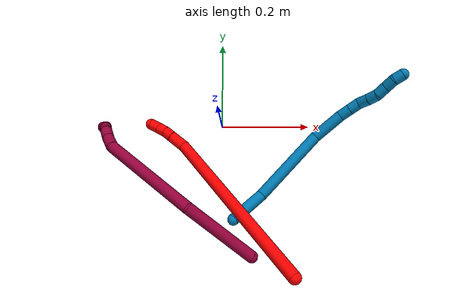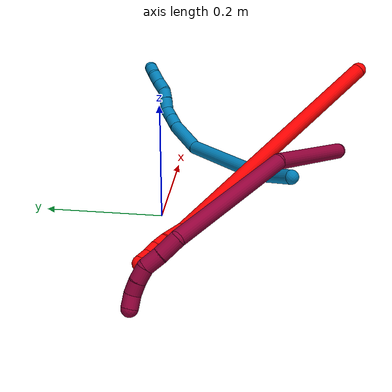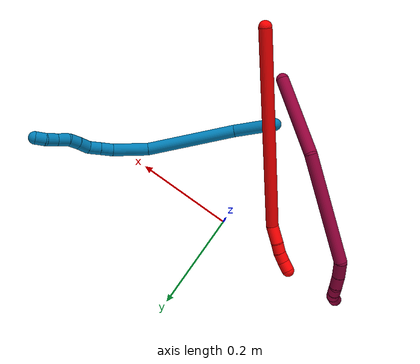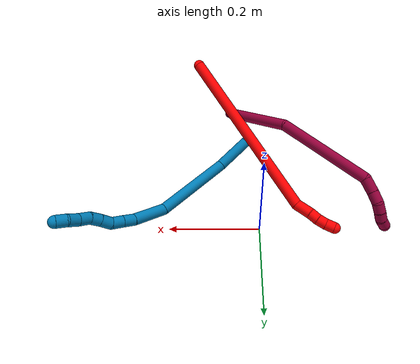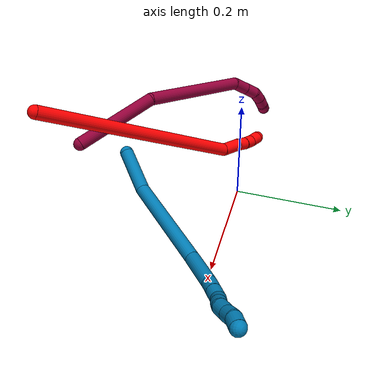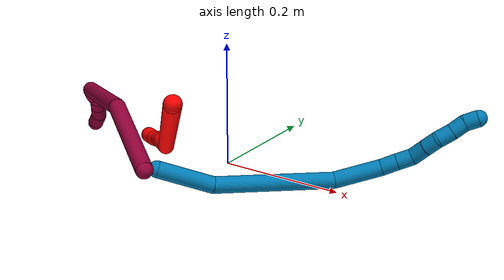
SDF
<sdf version="1.7">
 <world name="default">
  <model name="2">
   <static>0</static>
   <link name="2">
    <collision name="collision-cylinder-e_1_1_4">
     <pose>-0.054766 0.105555 -0.161891 -2.5638 -0.276135 0.874656</pose>
     <geometry><cylinder><radius>0.0125</radius><length>0.401745</length></cylinder></geometry>
     <surface>
      <friction><ode><mu>1.16</mu><mu2>1.16</mu2><slip1>0</slip1><slip2>0</slip2></ode></friction>
      <contact><ode><kp>1e+06</kp><kd>1</kd><max_vel>0</max_vel><min_depth>0.001</min_depth></ode></contact>
     </surface>
    </collision>
    <visual name="visual-cylinder-e_1_1_4">
     <pose>-0.054766 0.105555 -0.161891 -2.5638 -0.276135 0.874656</pose>
     <geometry><cylinder><radius>0.0125</radius><length>0.401745</length></cylinder></geometry>
     <material><ambient>1 0 0 1</ambient></material>
    </visual>
    <collision name="collision-cylinder-e_2_4_5">
     <pose>-0.119927 0.214545 -0.338696 -2.91524 -0.596665 2.43349</pose>
     <geometry><cylinder><radius>0.0125</radius><length>0.037003</length></cylinder></geometry>
     <surface>
      <friction><ode><mu>1.16</mu><mu2>1.16</mu2><slip1>0</slip1><slip2>0</slip2></ode></friction>
      <contact><ode><kp>1e+06</kp><kd>1</kd><max_vel>0</max_vel><min_depth>0.001</min_depth></ode></contact>
     </surface>
    </collision>
    <visual name="visual-cylinder-e_2_4_5">
     <pose>-0.119927 0.214545 -0.338696 -2.91524 -0.596665 2.43349</pose>
     <geometry><cylinder><radius>0.0125</radius><length>0.037003</length></cylinder></geometry>
     <material><ambient>1 0 0 1</ambient></material>
    </visual>
    <collision name="collision-cylinder-e_3_5_6">
     <pose>-0.134783 0.220891 -0.362161 -2.81338 -0.458634 1.90754</pose>
     <geometry><cylinder><radius>0.0125</radius><length>0.020148</length></cylinder></geometry>
     <surface>
      <friction><ode><mu>1.16</mu><mu2>1.16</mu2><slip1>0</slip1><slip2>0</slip2></ode></friction>
      <contact><ode><kp>1e+06</kp><kd>1</kd><max_vel>0</max_vel><min_depth>0.001</min_depth></ode></contact>
     </surface>
    </collision>
    <visual name="visual-cylinder-e_3_5_6">
     <pose>-0.134783 0.220891 -0.362161 -2.81338 -0.458634 1.90754</pose>
     <geometry><cylinder><radius>0.0125</radius><length>0.020148</length></cylinder></geometry>
     <material><ambient>1 0 0 1</ambient></material>
    </visual>
    <collision name="collision-cylinder-e_4_6_7">
     <pose>-0.143308 0.22515 -0.379944 -2.9967 -0.410864 2.47131</pose>
     <geometry><cylinder><radius>0.0125</radius><length>0.020355</length></cylinder></geometry>
     <surface>
      <friction><ode><mu>1.16</mu><mu2>1.16</mu2><slip1>0</slip1><slip2>0</slip2></ode></friction>
      <contact><ode><kp>1e+06</kp><kd>1</kd><max_vel>0</max_vel><min_depth>0.001</min_depth></ode></contact>
     </surface>
    </collision>
    <visual name="visual-cylinder-e_4_6_7">
     <pose>-0.143308 0.22515 -0.379944 -2.9967 -0.410864 2.47131</pose>
     <geometry><cylinder><radius>0.0125</radius><length>0.020355</length></cylinder></geometry>
     <material><ambient>1 0 0 1</ambient></material>
    </visual>
    <collision name="collision-cylinder-e_5_7_2">
     <pose>-0.15271 0.226621 -0.398072 -3.1277 -0.540376 3.09143</pose>
     <geometry><cylinder><radius>0.0125</radius><length>0.02075</length></cylinder></geometry>
     <surface>
      <friction><ode><mu>1.16</mu><mu2>1.16</mu2><slip1>0</slip1><slip2>0</slip2></ode></friction>
      <contact><ode><kp>1e+06</kp><kd>1</kd><max_vel>0</max_vel><min_depth>0.001</min_depth></ode></contact>
     </surface>
    </collision>
    <visual name="visual-cylinder-e_5_7_2">
     <pose>-0.15271 0.226621 -0.398072 -3.1277 -0.540376 3.09143</pose>
     <geometry><cylinder><radius>0.0125</radius><length>0.02075</length></cylinder></geometry>
     <material><ambient>1 0 0 1</ambient></material>
    </visual>
    <collision name="collision-sphere-2">
     <pose>-0.158047 0.226745 -0.406968 0 -0 0</pose>
     <geometry><sphere><radius>0.0125</radius></sphere></geometry>
     <surface>
      <friction><ode><mu>1.16</mu><mu2>1.16</mu2><slip1>0</slip1><slip2>0</slip2></ode></friction>
      <contact><ode><kp>1e+06</kp><kd>1</kd><max_vel>0</max_vel><min_depth>0.001</min_depth></ode></contact>
     </surface>
    </collision>
    <visual name="visual-sphere-2">
     <pose>-0.158047 0.226745 -0.406968 0 -0 0</pose>
     <geometry><sphere><radius>0.0125</radius></sphere></geometry>
     <material><ambient>1 0 0 1</ambient></material>
    </visual>
    <collision name="collision-sphere-7">
     <pose>-0.147372 0.226497 -0.389176 0 -0 0</pose>
     <geometry><sphere><radius>0.0125</radius></sphere></geometry>
     <surface>
      <friction><ode><mu>1.16</mu><mu2>1.16</mu2><slip1>0</slip1><slip2>0</slip2></ode></friction>
      <contact><ode><kp>1e+06</kp><kd>1</kd><max_vel>0</max_vel><min_depth>0.001</min_depth></ode></contact>
     </surface>
    </collision>
    <visual name="visual-sphere-7">
     <pose>-0.147372 0.226497 -0.389176 0 -0 0</pose>
     <geometry><sphere><radius>0.0125</radius></sphere></geometry>
     <material><ambient>1 0 0 1</ambient></material>
    </visual>
    <collision name="collision-sphere-6">
     <pose>-0.139243 0.223803 -0.370711 0 -0 0</pose>
     <geometry><sphere><radius>0.0125</radius></sphere></geometry>
     <surface>
      <friction><ode><mu>1.16</mu><mu2>1.16</mu2><slip1>0</slip1><slip2>0</slip2></ode></friction>
      <contact><ode><kp>1e+06</kp><kd>1</kd><max_vel>0</max_vel><min_depth>0.001</min_depth></ode></contact>
     </surface>
    </collision>
    <visual name="visual-sphere-6">
     <pose>-0.139243 0.223803 -0.370711 0 -0 0</pose>
     <geometry><sphere><radius>0.0125</radius></sphere></geometry>
     <material><ambient>1 0 0 1</ambient></material>
    </visual>
    <collision name="collision-sphere-5">
     <pose>-0.130323 0.21798 -0.35361 0 -0 0</pose>
     <geometry><sphere><radius>0.0125</radius></sphere></geometry>
     <surface>
      <friction><ode><mu>1.16</mu><mu2>1.16</mu2><slip1>0</slip1><slip2>0</slip2></ode></friction>
      <contact><ode><kp>1e+06</kp><kd>1</kd><max_vel>0</max_vel><min_depth>0.001</min_depth></ode></contact>
     </surface>
    </collision>
    <visual name="visual-sphere-5">
     <pose>-0.130323 0.21798 -0.35361 0 -0 0</pose>
     <geometry><sphere><radius>0.0125</radius></sphere></geometry>
     <material><ambient>1 0 0 1</ambient></material>
    </visual>
    <collision name="collision-sphere-1">
     <geometry><sphere><radius>0.0125</radius></sphere></geometry>
     <surface>
      <friction><ode><mu>1.16</mu><mu2>1.16</mu2><slip1>0</slip1><slip2>0</slip2></ode></friction>
      <contact><ode><kp>1e+06</kp><kd>1</kd><max_vel>0</max_vel><min_depth>0.001</min_depth></ode></contact>
     </surface>
    </collision>
    <visual name="visual-sphere-1">
     <geometry><sphere><radius>0.0125</radius></sphere></geometry>
     <material><ambient>1 0 0 1</ambient></material>
    </visual>
    <collision name="collision-sphere-4">
     <pose>-0.109531 0.21111 -0.323781 0 -0 0</pose>
     <geometry><sphere><radius>0.0125</radius></sphere></geometry>
     <surface>
      <friction><ode><mu>1.16</mu><mu2>1.16</mu2><slip1>0</slip1><slip2>0</slip2></ode></friction>
      <contact><ode><kp>1e+06</kp><kd>1</kd><max_vel>0</max_vel><min_depth>0.001</min_depth></ode></contact>
     </surface>
    </collision>
    <visual name="visual-sphere-4">
     <pose>-0.109531 0.21111 -0.323781 0 -0 0</pose>
     <geometry><sphere><radius>0.0125</radius></sphere></geometry>
     <material><ambient>1 0 0 1</ambient></material>
    </visual>
    <inertial>
     <pose>-0.070481 0.128161 -0.201723 0 -0 0</pose>
     <mass>0.5</mass>
     <inertia>
      <ixx>0.007331</ixx>
      <ixy>0</ixy>
      <ixz>0</ixz>
      <iyy>0.00174</iyy>
      <iyz>0</iyz>
      <izz>-0.001398</izz>
     </inertia>
    </inertial>
   </link>
   <pose>0.13931 -0.316263 0.226499 -0.866556 0.741483 -1.19155</pose>
  </model>
  <model name="8">
   <static>0</static>
   <link name="8">
    <collision name="collision-cylinder-e_1_1_4">
     <pose>-0.041654 0.044076 -0.054353 -2.46023 -0.536916 1.31988</pose>
     <geometry><cylinder><radius>0.0125</radius><length>0.162875</length></cylinder></geometry>
     <surface>
      <friction><ode><mu>1.16</mu><mu2>1.16</mu2><slip1>0</slip1><slip2>0</slip2></ode></friction>
      <contact><ode><kp>1e+06</kp><kd>1</kd><max_vel>0</max_vel><min_depth>0.001</min_depth></ode></contact>
     </surface>
    </collision>
    <visual name="visual-cylinder-e_1_1_4">
     <pose>-0.041654 0.044076 -0.054353 -2.46023 -0.536916 1.31988</pose>
     <geometry><cylinder><radius>0.0125</radius><length>0.162875</length></cylinder></geometry>
     <material><ambient>0.584314 0 0.227451 1</ambient></material>
    </visual>
    <collision name="collision-cylinder-e_2_4_5">
     <pose>-0.17035 0.137955 -0.149382 -2.25566 -0.934529 1.63231</pose>
     <geometry><cylinder><radius>0.0125</radius><length>0.216434</length></cylinder></geometry>
     <surface>
      <friction><ode><mu>1.16</mu><mu2>1.16</mu2><slip1>0</slip1><slip2>0</slip2></ode></friction>
      <contact><ode><kp>1e+06</kp><kd>1</kd><max_vel>0</max_vel><min_depth>0.001</min_depth></ode></contact>
     </surface>
    </collision>
    <visual name="visual-cylinder-e_2_4_5">
     <pose>-0.17035 0.137955 -0.149382 -2.25566 -0.934529 1.63231</pose>
     <geometry><cylinder><radius>0.0125</radius><length>0.216434</length></cylinder></geometry>
     <material><ambient>0.584314 0 0.227451 1</ambient></material>
    </visual>
    <collision name="collision-cylinder-e_3_5_6">
     <pose>-0.273567 0.189016 -0.192068 -2.58225 -1.4252 2.49981</pose>
     <geometry><cylinder><radius>0.0125</radius><length>0.032699</length></cylinder></geometry>
     <surface>
      <friction><ode><mu>1.16</mu><mu2>1.16</mu2><slip1>0</slip1><slip2>0</slip2></ode></friction>
      <contact><ode><kp>1e+06</kp><kd>1</kd><max_vel>0</max_vel><min_depth>0.001</min_depth></ode></contact>
     </surface>
    </collision>
    <visual name="visual-cylinder-e_3_5_6">
     <pose>-0.273567 0.189016 -0.192068 -2.58225 -1.4252 2.49981</pose>
     <geometry><cylinder><radius>0.0125</radius><length>0.032699</length></cylinder></geometry>
     <material><ambient>0.584314 0 0.227451 1</ambient></material>
    </visual>
    <collision name="collision-cylinder-e_4_6_7">
     <pose>-0.302462 0.190076 -0.196334 3.05376 -1.39467 -3.03677</pose>
     <geometry><cylinder><radius>0.0125</radius><length>0.025837</length></cylinder></geometry>
     <surface>
      <friction><ode><mu>1.16</mu><mu2>1.16</mu2><slip1>0</slip1><slip2>0</slip2></ode></friction>
      <contact><ode><kp>1e+06</kp><kd>1</kd><max_vel>0</max_vel><min_depth>0.001</min_depth></ode></contact>
     </surface>
    </collision>
    <visual name="visual-cylinder-e_4_6_7">
     <pose>-0.302462 0.190076 -0.196334 3.05376 -1.39467 -3.03677</pose>
     <geometry><cylinder><radius>0.0125</radius><length>0.025837</length></cylinder></geometry>
     <material><ambient>0.584314 0 0.227451 1</ambient></material>
    </visual>
    <collision name="collision-cylinder-e_5_7_8">
     <pose>-0.325917 0.18975 -0.19595 0.048289 -1.32951 -0.03785</pose>
     <geometry><cylinder><radius>0.0125</radius><length>0.022113</length></cylinder></geometry>
     <surface>
      <friction><ode><mu>1.16</mu><mu2>1.16</mu2><slip1>0</slip1><slip2>0</slip2></ode></friction>
      <contact><ode><kp>1e+06</kp><kd>1</kd><max_vel>0</max_vel><min_depth>0.001</min_depth></ode></contact>
     </surface>
    </collision>
    <visual name="visual-cylinder-e_5_7_8">
     <pose>-0.325917 0.18975 -0.19595 0.048289 -1.32951 -0.03785</pose>
     <geometry><cylinder><radius>0.0125</radius><length>0.022113</length></cylinder></geometry>
     <material><ambient>0.584314 0 0.227451 1</ambient></material>
    </visual>
    <collision name="collision-cylinder-e_6_8_9">
     <pose>-0.345936 0.189477 -0.189591 0.038871 -1.18947 -0.026296</pose>
     <geometry><cylinder><radius>0.0125</radius><length>0.020004</length></cylinder></geometry>
     <surface>
      <friction><ode><mu>1.16</mu><mu2>1.16</mu2><slip1>0</slip1><slip2>0</slip2></ode></friction>
      <contact><ode><kp>1e+06</kp><kd>1</kd><max_vel>0</max_vel><min_depth>0.001</min_depth></ode></contact>
     </surface>
    </collision>
    <visual name="visual-cylinder-e_6_8_9">
     <pose>-0.345936 0.189477 -0.189591 0.038871 -1.18947 -0.026296</pose>
     <geometry><cylinder><radius>0.0125</radius><length>0.020004</length></cylinder></geometry>
     <material><ambient>0.584314 0 0.227451 1</ambient></material>
    </visual>
    <collision name="collision-cylinder-e_7_9_2">
     <pose>-0.363772 0.192299 -0.181577 -0.604402 -1.02276 0.346387</pose>
     <geometry><cylinder><radius>0.0125</radius><length>0.020038</length></cylinder></geometry>
     <surface>
      <friction><ode><mu>1.16</mu><mu2>1.16</mu2><slip1>0</slip1><slip2>0</slip2></ode></friction>
      <contact><ode><kp>1e+06</kp><kd>1</kd><max_vel>0</max_vel><min_depth>0.001</min_depth></ode></contact>
     </surface>
    </collision>
    <visual name="visual-cylinder-e_7_9_2">
     <pose>-0.363772 0.192299 -0.181577 -0.604402 -1.02276 0.346387</pose>
     <geometry><cylinder><radius>0.0125</radius><length>0.020038</length></cylinder></geometry>
     <material><ambient>0.584314 0 0.227451 1</ambient></material>
    </visual>
    <collision name="collision-sphere-2">
     <pose>-0.372324 0.195266 -0.177281 0 -0 0</pose>
     <geometry><sphere><radius>0.0125</radius></sphere></geometry>
     <surface>
      <friction><ode><mu>1.16</mu><mu2>1.16</mu2><slip1>0</slip1><slip2>0</slip2></ode></friction>
      <contact><ode><kp>1e+06</kp><kd>1</kd><max_vel>0</max_vel><min_depth>0.001</min_depth></ode></contact>
     </surface>
    </collision>
    <visual name="visual-sphere-2">
     <pose>-0.372324 0.195266 -0.177281 0 -0 0</pose>
     <geometry><sphere><radius>0.0125</radius></sphere></geometry>
     <material><ambient>0.584314 0 0.227451 1</ambient></material>
    </visual>
    <collision name="collision-sphere-9">
     <pose>-0.35522 0.189333 -0.185872 0 -0 0</pose>
     <geometry><sphere><radius>0.0125</radius></sphere></geometry>
     <surface>
      <friction><ode><mu>1.16</mu><mu2>1.16</mu2><slip1>0</slip1><slip2>0</slip2></ode></friction>
      <contact><ode><kp>1e+06</kp><kd>1</kd><max_vel>0</max_vel><min_depth>0.001</min_depth></ode></contact>
     </surface>
    </collision>
    <visual name="visual-sphere-9">
     <pose>-0.35522 0.189333 -0.185872 0 -0 0</pose>
     <geometry><sphere><radius>0.0125</radius></sphere></geometry>
     <material><ambient>0.584314 0 0.227451 1</ambient></material>
    </visual>
    <collision name="collision-sphere-4">
     <pose>-0.083309 0.088152 -0.108707 0 -0 0</pose>
     <geometry><sphere><radius>0.0125</radius></sphere></geometry>
     <surface>
      <friction><ode><mu>1.16</mu><mu2>1.16</mu2><slip1>0</slip1><slip2>0</slip2></ode></friction>
      <contact><ode><kp>1e+06</kp><kd>1</kd><max_vel>0</max_vel><min_depth>0.001</min_depth></ode></contact>
     </surface>
    </collision>
    <visual name="visual-sphere-4">
     <pose>-0.083309 0.088152 -0.108707 0 -0 0</pose>
     <geometry><sphere><radius>0.0125</radius></sphere></geometry>
     <material><ambient>0.584314 0 0.227451 1</ambient></material>
    </visual>
    <collision name="collision-sphere-1">
     <geometry><sphere><radius>0.0125</radius></sphere></geometry>
     <surface>
      <friction><ode><mu>1.16</mu><mu2>1.16</mu2><slip1>0</slip1><slip2>0</slip2></ode></friction>
      <contact><ode><kp>1e+06</kp><kd>1</kd><max_vel>0</max_vel><min_depth>0.001</min_depth></ode></contact>
     </surface>
    </collision>
    <visual name="visual-sphere-1">
     <geometry><sphere><radius>0.0125</radius></sphere></geometry>
     <material><ambient>0.584314 0 0.227451 1</ambient></material>
    </visual>
    <collision name="collision-sphere-8">
     <pose>-0.336653 0.189622 -0.193311 0 -0 0</pose>
     <geometry><sphere><radius>0.0125</radius></sphere></geometry>
     <surface>
      <friction><ode><mu>1.16</mu><mu2>1.16</mu2><slip1>0</slip1><slip2>0</slip2></ode></friction>
      <contact><ode><kp>1e+06</kp><kd>1</kd><max_vel>0</max_vel><min_depth>0.001</min_depth></ode></contact>
     </surface>
    </collision>
    <visual name="visual-sphere-8">
     <pose>-0.336653 0.189622 -0.193311 0 -0 0</pose>
     <geometry><sphere><radius>0.0125</radius></sphere></geometry>
     <material><ambient>0.584314 0 0.227451 1</ambient></material>
    </visual>
    <collision name="collision-sphere-5">
     <pose>-0.25739 0.187757 -0.190058 0 -0 0</pose>
     <geometry><sphere><radius>0.0125</radius></sphere></geometry>
     <surface>
      <friction><ode><mu>1.16</mu><mu2>1.16</mu2><slip1>0</slip1><slip2>0</slip2></ode></friction>
      <contact><ode><kp>1e+06</kp><kd>1</kd><max_vel>0</max_vel><min_depth>0.001</min_depth></ode></contact>
     </surface>
    </collision>
    <visual name="visual-sphere-5">
     <pose>-0.25739 0.187757 -0.190058 0 -0 0</pose>
     <geometry><sphere><radius>0.0125</radius></sphere></geometry>
     <material><ambient>0.584314 0 0.227451 1</ambient></material>
    </visual>
    <collision name="collision-sphere-6">
     <pose>-0.289744 0.190274 -0.194079 0 -0 0</pose>
     <geometry><sphere><radius>0.0125</radius></sphere></geometry>
     <surface>
      <friction><ode><mu>1.16</mu><mu2>1.16</mu2><slip1>0</slip1><slip2>0</slip2></ode></friction>
      <contact><ode><kp>1e+06</kp><kd>1</kd><max_vel>0</max_vel><min_depth>0.001</min_depth></ode></contact>
     </surface>
    </collision>
    <visual name="visual-sphere-6">
     <pose>-0.289744 0.190274 -0.194079 0 -0 0</pose>
     <geometry><sphere><radius>0.0125</radius></sphere></geometry>
     <material><ambient>0.584314 0 0.227451 1</ambient></material>
    </visual>
    <collision name="collision-sphere-7">
     <pose>-0.315181 0.189877 -0.198589 0 -0 0</pose>
     <geometry><sphere><radius>0.0125</radius></sphere></geometry>
     <surface>
      <friction><ode><mu>1.16</mu><mu2>1.16</mu2><slip1>0</slip1><slip2>0</slip2></ode></friction>
      <contact><ode><kp>1e+06</kp><kd>1</kd><max_vel>0</max_vel><min_depth>0.001</min_depth></ode></contact>
     </surface>
    </collision>
    <visual name="visual-sphere-7">
     <pose>-0.315181 0.189877 -0.198589 0 -0 0</pose>
     <geometry><sphere><radius>0.0125</radius></sphere></geometry>
     <material><ambient>0.584314 0 0.227451 1</ambient></material>
    </visual>
    <inertial>
     <pose>-0.163661 0.119936 -0.128603 0 -0 0</pose>
     <mass>0.5</mass>
     <inertia>
      <ixx>0.00083</ixx>
      <ixy>0</ixy>
      <ixz>0</ixz>
      <iyy>0.001446</iyy>
      <iyz>0</iyz>
      <izz>0.000279</izz>
     </inertia>
    </inertial>
   </link>
   <pose>0.065986 -0.288469 0.108585 2.90032 -0.758055 -1.03502</pose>
  </model>
  <model name="9">
   <static>0</static>
   <link name="9">
    <collision name="collision-cylinder-e_1_1_4">
     <pose>-0.005854 0.035158 0.023272 -0.986085 -0.137968 0.074214</pose>
     <geometry><cylinder><radius>0.0125</radius><length>0.085133</length></cylinder></geometry>
     <surface>
      <friction><ode><mu>1.16</mu><mu2>1.16</mu2><slip1>0</slip1><slip2>0</slip2></ode></friction>
      <contact><ode><kp>1e+06</kp><kd>1</kd><max_vel>0</max_vel><min_depth>0.001</min_depth></ode></contact>
     </surface>
    </collision>
    <visual name="visual-cylinder-e_1_1_4">
     <pose>-0.005854 0.035158 0.023272 -0.986085 -0.137968 0.074214</pose>
     <geometry><cylinder><radius>0.0125</radius><length>0.085133</length></cylinder></geometry>
     <material><ambient>0 0.490196 0.709804 1</ambient></material>
    </visual>
    <collision name="collision-cylinder-e_2_4_5">
     <pose>-0.019697 0.127004 0.116474 -0.68119 -0.088513 0.031387</pose>
     <geometry><cylinder><radius>0.0125</radius><length>0.18075</length></cylinder></geometry>
     <surface>
      <friction><ode><mu>1.16</mu><mu2>1.16</mu2><slip1>0</slip1><slip2>0</slip2></ode></friction>
      <contact><ode><kp>1e+06</kp><kd>1</kd><max_vel>0</max_vel><min_depth>0.001</min_depth></ode></contact>
     </surface>
    </collision>
    <visual name="visual-cylinder-e_2_4_5">
     <pose>-0.019697 0.127004 0.116474 -0.68119 -0.088513 0.031387</pose>
     <geometry><cylinder><radius>0.0125</radius><length>0.18075</length></cylinder></geometry>
     <material><ambient>0 0.490196 0.709804 1</ambient></material>
    </visual>
    <collision name="collision-cylinder-e_3_5_6">
     <pose>-0.021235 0.20003 0.217976 -0.477553 0.179533 -0.043813</pose>
     <geometry><cylinder><radius>0.0125</radius><length>0.072258</length></cylinder></geometry>
     <surface>
      <friction><ode><mu>1.16</mu><mu2>1.16</mu2><slip1>0</slip1><slip2>0</slip2></ode></friction>
      <contact><ode><kp>1e+06</kp><kd>1</kd><max_vel>0</max_vel><min_depth>0.001</min_depth></ode></contact>
     </surface>
    </collision>
    <visual name="visual-cylinder-e_3_5_6">
     <pose>-0.021235 0.20003 0.217976 -0.477553 0.179533 -0.043813</pose>
     <geometry><cylinder><radius>0.0125</radius><length>0.072258</length></cylinder></geometry>
     <material><ambient>0 0.490196 0.709804 1</ambient></material>
    </visual>
    <collision name="collision-cylinder-e_4_6_7">
     <pose>-0.01056 0.220976 0.260422 -0.40077 0.343397 -0.070412</pose>
     <geometry><cylinder><radius>0.0125</radius><length>0.025086</length></cylinder></geometry>
     <surface>
      <friction><ode><mu>1.16</mu><mu2>1.16</mu2><slip1>0</slip1><slip2>0</slip2></ode></friction>
      <contact><ode><kp>1e+06</kp><kd>1</kd><max_vel>0</max_vel><min_depth>0.001</min_depth></ode></contact>
     </surface>
    </collision>
    <visual name="visual-cylinder-e_4_6_7">
     <pose>-0.01056 0.220976 0.260422 -0.40077 0.343397 -0.070412</pose>
     <geometry><cylinder><radius>0.0125</radius><length>0.025086</length></cylinder></geometry>
     <material><ambient>0 0.490196 0.709804 1</ambient></material>
    </visual>
    <collision name="collision-cylinder-e_5_7_8">
     <pose>-0.002443 0.230215 0.281739 -0.417502 0.328499 -0.070192</pose>
     <geometry><cylinder><radius>0.0125</radius><length>0.024136</length></cylinder></geometry>
     <surface>
      <friction><ode><mu>1.16</mu><mu2>1.16</mu2><slip1>0</slip1><slip2>0</slip2></ode></friction>
      <contact><ode><kp>1e+06</kp><kd>1</kd><max_vel>0</max_vel><min_depth>0.001</min_depth></ode></contact>
     </surface>
    </collision>
    <visual name="visual-cylinder-e_5_7_8">
     <pose>-0.002443 0.230215 0.281739 -0.417502 0.328499 -0.070192</pose>
     <geometry><cylinder><radius>0.0125</radius><length>0.024136</length></cylinder></geometry>
     <material><ambient>0 0.490196 0.709804 1</ambient></material>
    </visual>
    <collision name="collision-cylinder-e_6_8_9">
     <pose>0.009052 0.235755 0.301544 -0.096648 0.67964 -0.034192</pose>
     <geometry><cylinder><radius>0.0125</radius><length>0.024189</length></cylinder></geometry>
     <surface>
      <friction><ode><mu>1.16</mu><mu2>1.16</mu2><slip1>0</slip1><slip2>0</slip2></ode></friction>
      <contact><ode><kp>1e+06</kp><kd>1</kd><max_vel>0</max_vel><min_depth>0.001</min_depth></ode></contact>
     </surface>
    </collision>
    <visual name="visual-cylinder-e_6_8_9">
     <pose>0.009052 0.235755 0.301544 -0.096648 0.67964 -0.034192</pose>
     <geometry><cylinder><radius>0.0125</radius><length>0.024189</length></cylinder></geometry>
     <material><ambient>0 0.490196 0.709804 1</ambient></material>
    </visual>
    <collision name="collision-cylinder-e_7_9_10">
     <pose>0.02274 0.237718 0.319813 -0.117955 0.59631 -0.036288</pose>
     <geometry><cylinder><radius>0.0125</radius><length>0.021676</length></cylinder></geometry>
     <surface>
      <friction><ode><mu>1.16</mu><mu2>1.16</mu2><slip1>0</slip1><slip2>0</slip2></ode></friction>
      <contact><ode><kp>1e+06</kp><kd>1</kd><max_vel>0</max_vel><min_depth>0.001</min_depth></ode></contact>
     </surface>
    </collision>
    <visual name="visual-cylinder-e_7_9_10">
     <pose>0.02274 0.237718 0.319813 -0.117955 0.59631 -0.036288</pose>
     <geometry><cylinder><radius>0.0125</radius><length>0.021676</length></cylinder></geometry>
     <material><ambient>0 0.490196 0.709804 1</ambient></material>
    </visual>
    <collision name="collision-cylinder-e_8_10_11">
     <pose>0.031778 0.241432 0.339812 -0.23523 0.253198 -0.030077</pose>
     <geometry><cylinder><radius>0.0125</radius><length>0.023568</length></cylinder></geometry>
     <surface>
      <friction><ode><mu>1.16</mu><mu2>1.16</mu2><slip1>0</slip1><slip2>0</slip2></ode></friction>
      <contact><ode><kp>1e+06</kp><kd>1</kd><max_vel>0</max_vel><min_depth>0.001</min_depth></ode></contact>
     </surface>
    </collision>
    <visual name="visual-cylinder-e_8_10_11">
     <pose>0.031778 0.241432 0.339812 -0.23523 0.253198 -0.030077</pose>
     <geometry><cylinder><radius>0.0125</radius><length>0.023568</length></cylinder></geometry>
     <material><ambient>0 0.490196 0.709804 1</ambient></material>
    </visual>
    <collision name="collision-cylinder-e_9_11_12">
     <pose>0.038232 0.245278 0.361415 -0.112412 0.319743 -0.018145</pose>
     <geometry><cylinder><radius>0.0125</radius><length>0.022282</length></cylinder></geometry>
     <surface>
      <friction><ode><mu>1.16</mu><mu2>1.16</mu2><slip1>0</slip1><slip2>0</slip2></ode></friction>
      <contact><ode><kp>1e+06</kp><kd>1</kd><max_vel>0</max_vel><min_depth>0.001</min_depth></ode></contact>
     </surface>
    </collision>
    <visual name="visual-cylinder-e_9_11_12">
     <pose>0.038232 0.245278 0.361415 -0.112412 0.319743 -0.018145</pose>
     <geometry><cylinder><radius>0.0125</radius><length>0.022282</length></cylinder></geometry>
     <material><ambient>0 0.490196 0.709804 1</ambient></material>
    </visual>
    <collision name="collision-cylinder-e_10_12_2">
     <pose>0.045614 0.250641 0.380696 -0.444461 0.379968 -0.086852</pose>
     <geometry><cylinder><radius>0.0125</radius><length>0.020921</length></cylinder></geometry>
     <surface>
      <friction><ode><mu>1.16</mu><mu2>1.16</mu2><slip1>0</slip1><slip2>0</slip2></ode></friction>
      <contact><ode><kp>1e+06</kp><kd>1</kd><max_vel>0</max_vel><min_depth>0.001</min_depth></ode></contact>
     </surface>
    </collision>
    <visual name="visual-cylinder-e_10_12_2">
     <pose>0.045614 0.250641 0.380696 -0.444461 0.379968 -0.086852</pose>
     <geometry><cylinder><radius>0.0125</radius><length>0.020921</length></cylinder></geometry>
     <material><ambient>0 0.490196 0.709804 1</ambient></material>
    </visual>
    <collision name="collision-sphere-2">
     <pose>0.049493 0.254818 0.389466 0 -0 0</pose>
     <geometry><sphere><radius>0.0125</radius></sphere></geometry>
     <surface>
      <friction><ode><mu>1.16</mu><mu2>1.16</mu2><slip1>0</slip1><slip2>0</slip2></ode></friction>
      <contact><ode><kp>1e+06</kp><kd>1</kd><max_vel>0</max_vel><min_depth>0.001</min_depth></ode></contact>
     </surface>
    </collision>
    <visual name="visual-sphere-2">
     <pose>0.049493 0.254818 0.389466 0 -0 0</pose>
     <geometry><sphere><radius>0.0125</radius></sphere></geometry>
     <material><ambient>0 0.490196 0.709804 1</ambient></material>
    </visual>
    <collision name="collision-sphere-12">
     <pose>0.041734 0.246464 0.371925 0 -0 0</pose>
     <geometry><sphere><radius>0.0125</radius></sphere></geometry>
     <surface>
      <friction><ode><mu>1.16</mu><mu2>1.16</mu2><slip1>0</slip1><slip2>0</slip2></ode></friction>
      <contact><ode><kp>1e+06</kp><kd>1</kd><max_vel>0</max_vel><min_depth>0.001</min_depth></ode></contact>
     </surface>
    </collision>
    <visual name="visual-sphere-12">
     <pose>0.041734 0.246464 0.371925 0 -0 0</pose>
     <geometry><sphere><radius>0.0125</radius></sphere></geometry>
     <material><ambient>0 0.490196 0.709804 1</ambient></material>
    </visual>
    <collision name="collision-sphere-11">
     <pose>0.03473 0.244091 0.350906 0 -0 0</pose>
     <geometry><sphere><radius>0.0125</radius></sphere></geometry>
     <surface>
      <friction><ode><mu>1.16</mu><mu2>1.16</mu2><slip1>0</slip1><slip2>0</slip2></ode></friction>
      <contact><ode><kp>1e+06</kp><kd>1</kd><max_vel>0</max_vel><min_depth>0.001</min_depth></ode></contact>
     </surface>
    </collision>
    <visual name="visual-sphere-11">
     <pose>0.03473 0.244091 0.350906 0 -0 0</pose>
     <geometry><sphere><radius>0.0125</radius></sphere></geometry>
     <material><ambient>0 0.490196 0.709804 1</ambient></material>
    </visual>
    <collision name="collision-sphere-10">
     <pose>0.028827 0.238773 0.328718 0 -0 0</pose>
     <geometry><sphere><radius>0.0125</radius></sphere></geometry>
     <surface>
      <friction><ode><mu>1.16</mu><mu2>1.16</mu2><slip1>0</slip1><slip2>0</slip2></ode></friction>
      <contact><ode><kp>1e+06</kp><kd>1</kd><max_vel>0</max_vel><min_depth>0.001</min_depth></ode></contact>
     </surface>
    </collision>
    <visual name="visual-sphere-10">
     <pose>0.028827 0.238773 0.328718 0 -0 0</pose>
     <geometry><sphere><radius>0.0125</radius></sphere></geometry>
     <material><ambient>0 0.490196 0.709804 1</ambient></material>
    </visual>
    <collision name="collision-sphere-9">
     <pose>0.016653 0.236663 0.310907 0 -0 0</pose>
     <geometry><sphere><radius>0.0125</radius></sphere></geometry>
     <surface>
      <friction><ode><mu>1.16</mu><mu2>1.16</mu2><slip1>0</slip1><slip2>0</slip2></ode></friction>
      <contact><ode><kp>1e+06</kp><kd>1</kd><max_vel>0</max_vel><min_depth>0.001</min_depth></ode></contact>
     </surface>
    </collision>
    <visual name="visual-sphere-9">
     <pose>0.016653 0.236663 0.310907 0 -0 0</pose>
     <geometry><sphere><radius>0.0125</radius></sphere></geometry>
     <material><ambient>0 0.490196 0.709804 1</ambient></material>
    </visual>
    <collision name="collision-sphere-4">
     <pose>-0.011708 0.070316 0.046544 0 -0 0</pose>
     <geometry><sphere><radius>0.0125</radius></sphere></geometry>
     <surface>
      <friction><ode><mu>1.16</mu><mu2>1.16</mu2><slip1>0</slip1><slip2>0</slip2></ode></friction>
      <contact><ode><kp>1e+06</kp><kd>1</kd><max_vel>0</max_vel><min_depth>0.001</min_depth></ode></contact>
     </surface>
    </collision>
    <visual name="visual-sphere-4">
     <pose>-0.011708 0.070316 0.046544 0 -0 0</pose>
     <geometry><sphere><radius>0.0125</radius></sphere></geometry>
     <material><ambient>0 0.490196 0.709804 1</ambient></material>
    </visual>
    <collision name="collision-sphere-1">
     <geometry><sphere><radius>0.0125</radius></sphere></geometry>
     <surface>
      <friction><ode><mu>1.16</mu><mu2>1.16</mu2><slip1>0</slip1><slip2>0</slip2></ode></friction>
      <contact><ode><kp>1e+06</kp><kd>1</kd><max_vel>0</max_vel><min_depth>0.001</min_depth></ode></contact>
     </surface>
    </collision>
    <visual name="visual-sphere-1">
     <geometry><sphere><radius>0.0125</radius></sphere></geometry>
     <material><ambient>0 0.490196 0.709804 1</ambient></material>
    </visual>
    <collision name="collision-sphere-8">
     <pose>0.00145 0.234847 0.292181 0 -0 0</pose>
     <geometry><sphere><radius>0.0125</radius></sphere></geometry>
     <surface>
      <friction><ode><mu>1.16</mu><mu2>1.16</mu2><slip1>0</slip1><slip2>0</slip2></ode></friction>
      <contact><ode><kp>1e+06</kp><kd>1</kd><max_vel>0</max_vel><min_depth>0.001</min_depth></ode></contact>
     </surface>
    </collision>
    <visual name="visual-sphere-8">
     <pose>0.00145 0.234847 0.292181 0 -0 0</pose>
     <geometry><sphere><radius>0.0125</radius></sphere></geometry>
     <material><ambient>0 0.490196 0.709804 1</ambient></material>
    </visual>
    <collision name="collision-sphere-5">
     <pose>-0.027686 0.183692 0.186405 0 -0 0</pose>
     <geometry><sphere><radius>0.0125</radius></sphere></geometry>
     <surface>
      <friction><ode><mu>1.16</mu><mu2>1.16</mu2><slip1>0</slip1><slip2>0</slip2></ode></friction>
      <contact><ode><kp>1e+06</kp><kd>1</kd><max_vel>0</max_vel><min_depth>0.001</min_depth></ode></contact>
     </surface>
    </collision>
    <visual name="visual-sphere-5">
     <pose>-0.027686 0.183692 0.186405 0 -0 0</pose>
     <geometry><sphere><radius>0.0125</radius></sphere></geometry>
     <material><ambient>0 0.490196 0.709804 1</ambient></material>
    </visual>
    <collision name="collision-sphere-6">
     <pose>-0.014783 0.216368 0.249547 0 -0 0</pose>
     <geometry><sphere><radius>0.0125</radius></sphere></geometry>
     <surface>
      <friction><ode><mu>1.16</mu><mu2>1.16</mu2><slip1>0</slip1><slip2>0</slip2></ode></friction>
      <contact><ode><kp>1e+06</kp><kd>1</kd><max_vel>0</max_vel><min_depth>0.001</min_depth></ode></contact>
     </surface>
    </collision>
    <visual name="visual-sphere-6">
     <pose>-0.014783 0.216368 0.249547 0 -0 0</pose>
     <geometry><sphere><radius>0.0125</radius></sphere></geometry>
     <material><ambient>0 0.490196 0.709804 1</ambient></material>
    </visual>
    <collision name="collision-sphere-7">
     <pose>-0.006337 0.225584 0.271297 0 -0 0</pose>
     <geometry><sphere><radius>0.0125</radius></sphere></geometry>
     <surface>
      <friction><ode><mu>1.16</mu><mu2>1.16</mu2><slip1>0</slip1><slip2>0</slip2></ode></friction>
      <contact><ode><kp>1e+06</kp><kd>1</kd><max_vel>0</max_vel><min_depth>0.001</min_depth></ode></contact>
     </surface>
    </collision>
    <visual name="visual-sphere-7">
     <pose>-0.006337 0.225584 0.271297 0 -0 0</pose>
     <geometry><sphere><radius>0.0125</radius></sphere></geometry>
     <material><ambient>0 0.490196 0.709804 1</ambient></material>
    </visual>
    <inertial>
     <pose>-0.0053 0.157515 0.18074 0 -0 0</pose>
     <mass>0.5</mass>
     <inertia>
      <ixx>0.000618</ixx>
      <ixy>0</ixy>
      <ixz>0</ixz>
      <iyy>0.0005</iyy>
      <iyz>0</iyz>
      <izz>-0.000306</izz>
     </inertia>
    </inertial>
   </link>
   <pose>0.028065 -0.214172 0.07385 -0.906508 -0.506629 -0.820648</pose>
  </model>
 </world>
</sdf>
